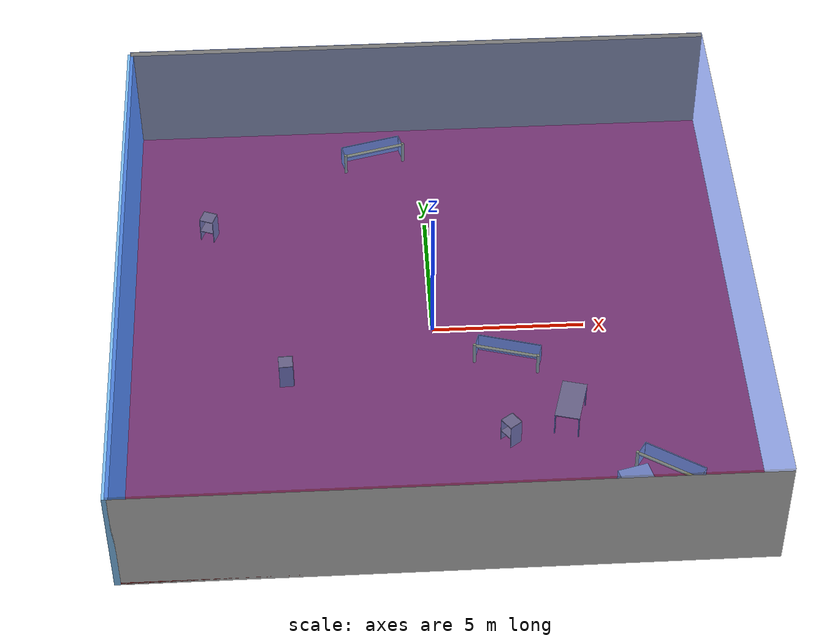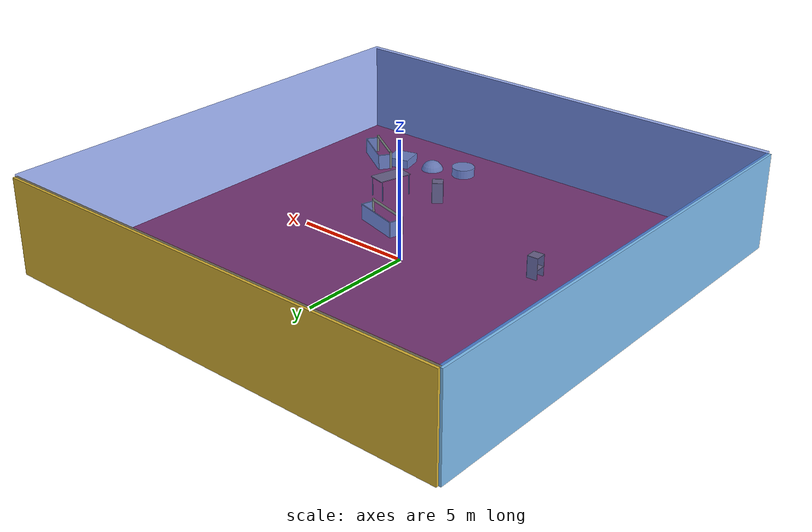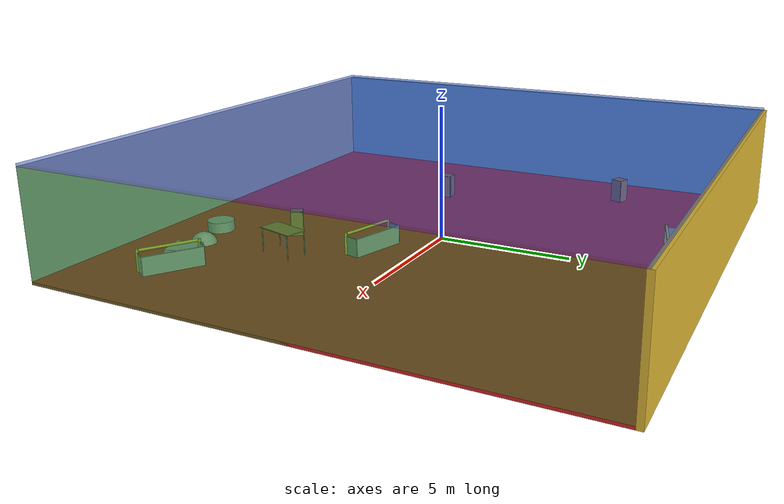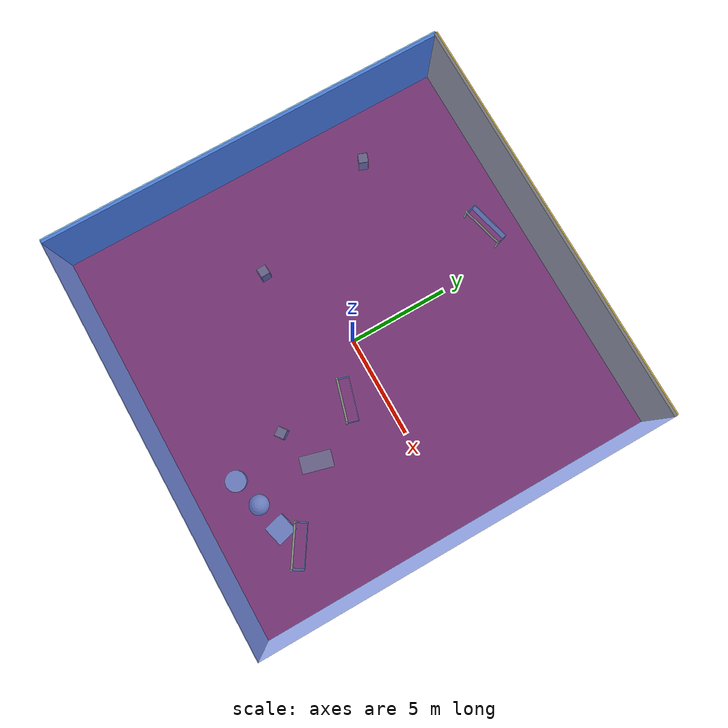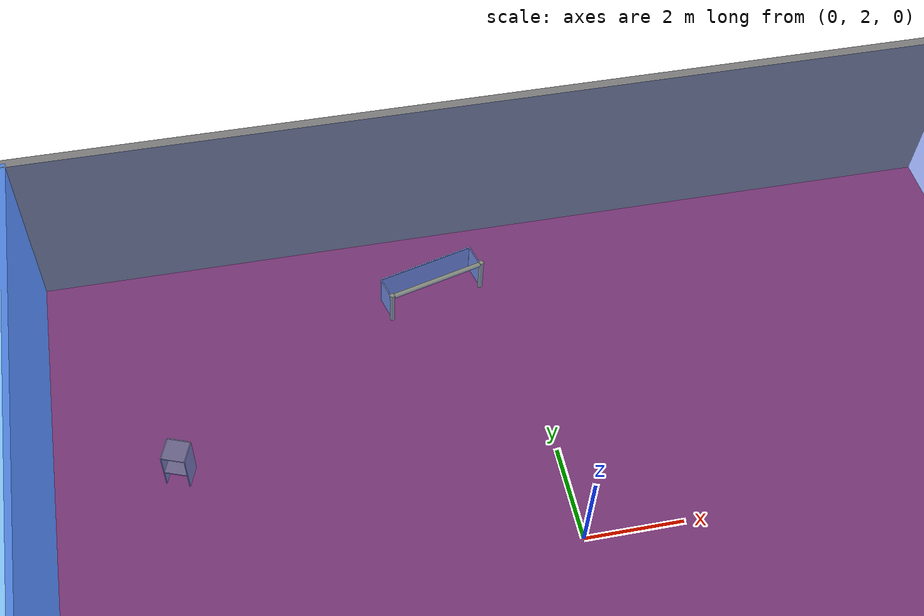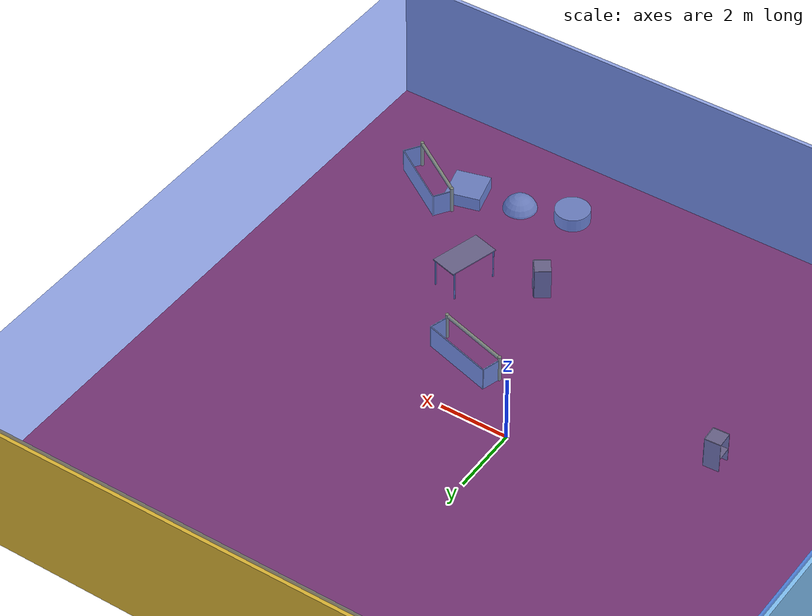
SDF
<sdf version="1.4">
 <world name="default">
  <physics type="ode">
   <max_step_size>0.001</max_step_size>
   <real_time_factor>1</real_time_factor>
   <real_time_update_rate>1000</real_time_update_rate>
   <gravity>0 0 -9.8</gravity>
  </physics>
  <scene><ambient>0.4 0.4 0.4 1</ambient><background>0.7 0.7 0.7 1</background><shadows>1</shadows></scene>
  <model name="Surrounding">
   <static>1</static>
   <link name="Ceiling">
    <collision name="Ceiling_Collision"><geometry><box><size>20 20 0.1</size></box></geometry></collision>
    <visual name="Ceiling_Visual">
     <geometry><box><size>20 20 0.1</size></box></geometry>
     <material>
      <script><uri>file://media/materials/scripts/gazebo.material</uri><name>Gazebo/BlueTransparent</name></script>
     </material>
    </visual>
    <pose>0 0 4.05 0 0 0</pose>
   </link>
   <link name="Wall_South">
    <collision name="Wall_South_Collision">
     <geometry><box><size>20 0 4</size></box></geometry>
     <pose>0 0 2 0 -0 0</pose>
    </collision>
    <visual name="Wall_South_Visual">
     <pose>0 0 2 0 -0 0</pose>
     <geometry><box><size>20 0 4</size></box></geometry>
     <material>
      <script><uri>file://media/materials/scripts/gazebo.material</uri><name>Gazebo/JointAnchor</name></script>
     </material>
    </visual>
    <velocity_decay><linear>0</linear><angular>0</angular></velocity_decay>
    <pose>0 -10 0 0 -0 0</pose>
   </link>
   <link name="Wall_East">
    <collision name="Wall_21_Collision">
     <geometry><box><size>20 0 4</size></box></geometry>
     <pose>0 0 2 0 -0 0</pose>
    </collision>
    <visual name="Wall_21_Visual">
     <pose>0 0 2 0 -0 0</pose>
     <geometry><box><size>20 0 4</size></box></geometry>
     <material>
      <script><uri>file://media/materials/scripts/gazebo.material</uri><name>Gazebo/GreenTransparent</name></script>
     </material>
    </visual>
    <velocity_decay><linear>0</linear><angular>0</angular></velocity_decay>
    <pose>10 0 0 0 -0 1.5708</pose>
   </link>
   <link name="Wall_North">
    <collision name="Wall_22_Collision">
     <geometry><box><size>20 0.2 4</size></box></geometry>
     <pose>0 0 2 0 -0 0</pose>
    </collision>
    <visual name="Wall_22_Visual">
     <pose>0 0 2 0 -0 0</pose>
     <geometry><box><size>20 0.2 4</size></box></geometry>
     <material>
      <script><uri>file://media/materials/scripts/gazebo.material</uri><name>Gazebo/Gold</name></script>
     </material>
    </visual>
    <velocity_decay><linear>0</linear><angular>0</angular></velocity_decay>
    <pose>0 10 0 0 -0 0</pose>
   </link>
   <link name="Wall_West">
    <collision name="Wall_23_Collision">
     <geometry><box><size>20 0.2 4</size></box></geometry>
     <pose>0 0 2 0 -0 0</pose>
    </collision>
    <visual name="Wall_23_Visual">
     <pose>0 0 2 0 -0 0</pose>
     <geometry><box><size>20 0.2 4</size></box></geometry>
     <material>
      <script><uri>file://media/materials/scripts/gazebo.material</uri><name>Gazebo/SkyBlue</name></script>
     </material>
    </visual>
    <velocity_decay><linear>0</linear><angular>0</angular></velocity_decay>
    <pose>-10 0 0 0 0 -1.5708</pose>
   </link>
   <link name="Ground_link">
    <collision name="collision">
     <pose>0 0 .05 0 -0 0</pose>
     <geometry><box><size>20 20 0.1</size></box></geometry>
    </collision>
    <visual name="visual">
     <pose>0 0 .05 0 -0 0</pose>
     <geometry><box><size>20 20 0.1</size></box></geometry>
     <material>
      <script><uri>file://media/materials/scripts/gazebo.material</uri><name>Gazebo/Red</name></script>
     </material>
    </visual>
   </link>
   <static>1</static>
  </model>
  <spherical_coordinates>
   <surface_model>EARTH_WGS84</surface_model>
   <latitude_deg>0</latitude_deg>
   <longitude_deg>0</longitude_deg>
   <elevation>0</elevation>
   <heading_deg>0</heading_deg>
  </spherical_coordinates>
  <light name="lightball_0" type="diffuse">
   <diffuse>0.8 0.8 0.8 1</diffuse>
   <specular>0.2 0.2 0.2 1</specular>
   <attenuation>
    <range>100</range>
    <constant>0.7</constant>
    <linear>0.01</linear>
    <quadratic>0.001</quadratic>
   </attenuation>
   <direction>-0.5 0.1 -0.9</direction>
   <pose>6.19026285154 -9.44621325947 3.875584128 0 0 0</pose>
  </light>
  <light name="lightball_1" type="diffuse">
   <diffuse>0.8 0.8 0.8 1</diffuse>
   <specular>0.2 0.2 0.2 1</specular>
   <attenuation>
    <range>100</range>
    <constant>0.7</constant>
    <linear>0.01</linear>
    <quadratic>0.001</quadratic>
   </attenuation>
   <direction>-0.5 0.1 -0.9</direction>
   <pose>-1.20539341565 -4.14651509416 0.690564679318 0 0 0</pose>
  </light>
  <light name="lightball_2" type="diffuse">
   <diffuse>0.8 0.8 0.8 1</diffuse>
   <specular>0.2 0.2 0.2 1</specular>
   <attenuation>
    <range>100</range>
    <constant>0.7</constant>
    <linear>0.01</linear>
    <quadratic>0.001</quadratic>
   </attenuation>
   <direction>-0.5 0.1 -0.9</direction>
   <pose>7.07514185815 -4.22994777794 1.44110281762 0 0 0</pose>
  </light>
  <light name="lightball_3" type="diffuse">
   <diffuse>0.8 0.8 0.8 1</diffuse>
   <specular>0.2 0.2 0.2 1</specular>
   <attenuation>
    <range>100</range>
    <constant>0.7</constant>
    <linear>0.01</linear>
    <quadratic>0.001</quadratic>
   </attenuation>
   <direction>-0.5 0.1 -0.9</direction>
   <pose>5.32745976253 -9.09951071164 2.57742832949 0 0 0</pose>
  </light>
  <light name="lightball_4" type="diffuse">
   <diffuse>0.8 0.8 0.8 1</diffuse>
   <specular>0.2 0.2 0.2 1</specular>
   <attenuation>
    <range>100</range>
    <constant>0.7</constant>
    <linear>0.01</linear>
    <quadratic>0.001</quadratic>
   </attenuation>
   <direction>-0.5 0.1 -0.9</direction>
   <pose>5.49087468874 7.72667204376 3.40375926265 0 0 0</pose>
  </light>
  <light name="lightball_5" type="diffuse">
   <diffuse>0.8 0.8 0.8 1</diffuse>
   <specular>0.2 0.2 0.2 1</specular>
   <attenuation>
    <range>100</range>
    <constant>0.7</constant>
    <linear>0.01</linear>
    <quadratic>0.001</quadratic>
   </attenuation>
   <direction>-0.5 0.1 -0.9</direction>
   <pose>6.17939071665 9.28994332738 1.51563249978 0 0 0</pose>
  </light>
  <light name="lightball_6" type="diffuse">
   <diffuse>0.8 0.8 0.8 1</diffuse>
   <specular>0.2 0.2 0.2 1</specular>
   <attenuation>
    <range>100</range>
    <constant>0.7</constant>
    <linear>0.01</linear>
    <quadratic>0.001</quadratic>
   </attenuation>
   <direction>-0.5 0.1 -0.9</direction>
   <pose>-5.34063555661 -4.89697029487 3.64036474086 0 0 0</pose>
  </light>
  <light name="lightball_7" type="diffuse">
   <diffuse>0.8 0.8 0.8 1</diffuse>
   <specular>0.2 0.2 0.2 1</specular>
   <attenuation>
    <range>100</range>
    <constant>0.7</constant>
    <linear>0.01</linear>
    <quadratic>0.001</quadratic>
   </attenuation>
   <direction>-0.5 0.1 -0.9</direction>
   <pose>-6.95609836835 -9.10379335691 0.880245391215 0 0 0</pose>
  </light>
  <light name="lightball_8" type="diffuse">
   <diffuse>0.8 0.8 0.8 1</diffuse>
   <specular>0.2 0.2 0.2 1</specular>
   <attenuation>
    <range>100</range>
    <constant>0.7</constant>
    <linear>0.01</linear>
    <quadratic>0.001</quadratic>
   </attenuation>
   <direction>-0.5 0.1 -0.9</direction>
   <pose>-7.41111098878 -9.05534996519 1.73860153598 0 0 0</pose>
  </light>
  <light name="lightball_9" type="diffuse">
   <diffuse>0.8 0.8 0.8 1</diffuse>
   <specular>0.2 0.2 0.2 1</specular>
   <attenuation>
    <range>100</range>
    <constant>0.7</constant>
    <linear>0.01</linear>
    <quadratic>0.001</quadratic>
   </attenuation>
   <direction>-0.5 0.1 -0.9</direction>
   <pose>5.25445521624 2.21813213734 1.53396854441 0 0 0</pose>
  </light>
  <light name="lightball_10" type="diffuse">
   <diffuse>0.8 0.8 0.8 1</diffuse>
   <specular>0.2 0.2 0.2 1</specular>
   <attenuation>
    <range>100</range>
    <constant>0.7</constant>
    <linear>0.01</linear>
    <quadratic>0.001</quadratic>
   </attenuation>
   <direction>-0.5 0.1 -0.9</direction>
   <pose>4.37216449938 -8.27664940153 1.66566934725 0 0 0</pose>
  </light>
  <light name="lightball_11" type="diffuse">
   <diffuse>0.8 0.8 0.8 1</diffuse>
   <specular>0.2 0.2 0.2 1</specular>
   <attenuation>
    <range>100</range>
    <constant>0.7</constant>
    <linear>0.01</linear>
    <quadratic>0.001</quadratic>
   </attenuation>
   <direction>-0.5 0.1 -0.9</direction>
   <pose>7.52077811942 -5.51353645012 0.68837661679 0 0 0</pose>
  </light>
  <light name="lightball_12" type="diffuse">
   <diffuse>0.8 0.8 0.8 1</diffuse>
   <specular>0.2 0.2 0.2 1</specular>
   <attenuation>
    <range>100</range>
    <constant>0.7</constant>
    <linear>0.01</linear>
    <quadratic>0.001</quadratic>
   </attenuation>
   <direction>-0.5 0.1 -0.9</direction>
   <pose>8.30132109126 1.35458813348 0.772356831954 0 0 0</pose>
  </light>
  <light name="lightball_13" type="diffuse">
   <diffuse>0.8 0.8 0.8 1</diffuse>
   <specular>0.2 0.2 0.2 1</specular>
   <attenuation>
    <range>100</range>
    <constant>0.7</constant>
    <linear>0.01</linear>
    <quadratic>0.001</quadratic>
   </attenuation>
   <direction>-0.5 0.1 -0.9</direction>
   <pose>6.7199157981 7.88726019677 1.72151339225 0 0 0</pose>
  </light>
  <include><uri>model://cabinet</uri><pose>-7.43624480478 4.75932487504 0 0 0 1.21129513832</pose></include>
  <include><uri>model://cabinet</uri><pose>-4.86920473858 -2.11645617131 0 0 0 0.0507558934031</pose></include>
  <include>
   <uri>model://robocup_3Dsim_goal</uri>
   <pose>-1.63929955957 8.04420127587 0 0 0 1.82366633204</pose>
  </include>
  <include><uri>model://cabinet</uri><pose>2.19136826163 -5.0202767383 0 0 0 0.631837550685</pose></include>
  <include>
   <uri>model://robocup_3Dsim_goal</uri>
   <pose>2.27671525776 -1.86753718893 0 0 0 1.29061195017</pose>
  </include>
  <include>
   <uri>model://textured_shapes</uri>
   <pose>4.53078782808 -7.53512802076 0 0 0 1.82937702881</pose>
  </include>
  <include><uri>model://table</uri><pose>4.14151788177 -4.23619360072 0 0 0 1.30839416519</pose></include>
  <include>
   <uri>model://robocup_3Dsim_goal</uri>
   <pose>6.89282218952 -6.97340407643 0 0 0 0.993620326912</pose>
  </include>
 </world>
</sdf>

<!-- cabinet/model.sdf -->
<sdf version="1.5">
  <model name="cabinet">
    <static>true</static>
    <link name="cabinet_bottom_plate">
      <inertial>
        <pose>0 0 -1 0 0 0</pose>
        <inertia>
          <ixx>2.050000</ixx>
          <ixy>0</ixy>
          <ixz>0</ixz>
          <iyy>2.050000</iyy>
          <iyz>0</iyz>
          <izz>2.050000</izz>
        </inertia>
        <mass>25.000000</mass>
      </inertial>
      <collision name="cabinet_bottom_plate_geom">
        <pose>0 0 0.010000 0 0 0</pose>
        <geometry>
          <box>
            <size>0.450000 0.450000 0.020000</size>
          </box>
        </geometry>
      </collision>
      <visual name="cabinet_bottom_plate_geom_visual">
        <pose>0 0 0.010000 0 0 0</pose>
        <geometry>
          <box>
            <size>0.450000 0.450000 0.020000</size>
          </box>
        </geometry>
        <material>
          <script>
            <uri>model://media/materials/scripts/gazebo.material</uri>
            <name>Gazebo/Wood</name>
          </script>
        </material>
      </visual>
      <collision name="cabinet_bottom_plate_geom_cabinet_back_plate">
        <pose>0.235000 0 0.510000 0 0 0</pose>
        <geometry>
          <box>
            <size>0.020000 0.450000 1.020000</size>
          </box>
        </geometry>
      </collision>
      <visual name="cabinet_bottom_plate_geom_cabinet_back_plate_visual">
        <pose>0.235000 0 0.510000 0 0 0</pose>
        <geometry>
          <box>
            <size>0.020000 0.450000 1.020000</size>
          </box>
        </geometry>
        <material>
          <script>
            <uri>model://media/materials/scripts/gazebo.material</uri>
            <name>Gazebo/Wood</name>
          </script>
        </material>
      </visual>
      <collision name="cabinet_bottom_plate_geom_cabinet_left_plate">
        <pose>0 0.235000 0.510000 0 0 0</pose>
        <geometry>
          <box>
            <size>0.450000 0.020000 1.020000</size>
          </box>
        </geometry>
      </collision>
      <visual name="cabinet_bottom_plate_geom_cabinet_left_plate_visual">
        <pose>0 0.235000 0.510000 0 0 0</pose>
        <geometry>
          <box>
            <size>0.450000 0.020000 1.020000</size>
          </box>
        </geometry>
        <material>
          <script>
            <uri>model://media/materials/scripts/gazebo.material</uri>
            <name>Gazebo/Wood</name>
          </script>
        </material>
      </visual>
      <collision name="cabinet_bottom_plate_geom_cabinet_middle_plate">
        <pose>0 0 0.510000 0 0 0</pose>
        <geometry>
          <box>
            <size>0.450000 0.450000 0.020000</size>
          </box>
        </geometry>
      </collision>
      <visual name="cabinet_bottom_plate_geom_cabinet_middle_plate_visual">
        <pose>0 0 0.510000 0 0 0</pose>
        <geometry>
          <box>
            <size>0.450000 0.450000 0.020000</size>
          </box>
        </geometry>
        <material>
          <script>
            <uri>model://media/materials/scripts/gazebo.material</uri>
            <name>Gazebo/Wood</name>
          </script>
        </material>
      </visual>
      <collision name="cabinet_bottom_plate_geom_cabinet_right_plate">
        <pose>0 -0.235000 0.510000 0 0 0</pose>
        <geometry>
          <box>
            <size>0.450000 0.020000 1.020000</size>
          </box>
        </geometry>
      </collision>
      <visual name="cabinet_bottom_plate_geom_cabinet_right_plate_visual">
        <pose>0 -0.235000 0.510000 0 0 0</pose>
        <geometry>
          <box>
            <size>0.450000 0.020000 1.020000</size>
          </box>
        </geometry>
        <material>
          <script>
            <uri>model://media/materials/scripts/gazebo.material</uri>
            <name>Gazebo/Wood</name>
          </script>
        </material>
      </visual>
      <collision name="cabinet_bottom_plate_geom_cabinet_top_plate">
        <pose>0 0 1.010000 0 0 0</pose>
        <geometry>
          <box>
            <size>0.450000 0.450000 0.020000</size>
          </box>
        </geometry>
      </collision>
      <visual name="cabinet_bottom_plate_geom_cabinet_top_plate_visual">
        <pose>0 0 1.010000 0 0 0</pose>
        <geometry>
          <box>
            <size>0.450000 0.450000 0.020000</size>
          </box>
        </geometry>
        <material>
          <script>
            <uri>model://media/materials/scripts/gazebo.material</uri>
            <name>Gazebo/Wood</name>
          </script>
        </material>
      </visual>
    </link>
  </model>
</sdf>

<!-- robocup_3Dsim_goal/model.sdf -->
<sdf version="1.5">
  <model name="robocup_3d_goal">
    <static>true</static>
    <link name="left_post">
      <pose>0 1.05 0.45 0 0 0</pose>
      <collision name="collision">
        <geometry>
          <cylinder>
            <radius>0.05</radius>
            <length>0.9</length>
          </cylinder>
        </geometry>
      </collision>
      <visual name="visual">
        <geometry>
          <cylinder>
            <radius>0.05</radius>
            <length>0.9</length>
          </cylinder>
        </geometry>
        <material>
          <script>
            <uri>file://media/materials/scripts/gazebo.material</uri>
            <name>Gazebo/ZincYellow</name>
          </script>
        </material>
      </visual>
    </link>
    <link name="left_support_horiz_lower">
      <pose>0.30 1.05 0.01 0 0 0</pose>
      <collision name="collision">
        <geometry>
          <box>
            <size>0.50 0.02 0.02</size>
          </box>
        </geometry>
      </collision>
      <visual name="visual">
        <geometry>
          <box>
            <size>0.50 0.02 0.02</size>
          </box>
        </geometry>
        <material>
          <script>
            <uri>file://media/materials/scripts/gazebo.material</uri>
            <name>Gazebo/White</name>
          </script>
        </material>
      </visual>
    </link>
    <link name="left_support_horiz_upper">
      <pose>0.30 1.05 0.79 0 0 0</pose>
      <collision name="collision">
        <geometry>
          <box>
            <size>0.50 0.02 0.02</size>
          </box>
        </geometry>
      </collision>
      <visual name="visual">
        <geometry>
          <box>
            <size>0.50 0.02 0.02</size>
          </box>
        </geometry>
        <material>
          <script>
            <uri>file://media/materials/scripts/gazebo.material</uri>
            <name>Gazebo/White</name>
          </script>
        </material>
      </visual>
    </link>
    <link name="left_support_vertical">
      <pose>0.56 1.05 0.4 0 1.5708 0</pose>
      <collision name="collision">
        <geometry>
          <box>
            <size>0.80 0.02 0.02</size>
          </box>
        </geometry>
      </collision>
      <visual name="visual">
        <geometry>
          <box>
            <size>0.80 0.02 0.02</size>
          </box>
        </geometry>
        <material>
          <script>
            <uri>file://media/materials/scripts/gazebo.material</uri>
            <name>Gazebo/White</name>
          </script>
        </material>
      </visual>
    </link>
    <link name="right_support_horiz_lower">
      <pose>0.30 -1.05 0.01 0 0 0</pose>
      <collision name="collision">
        <geometry>
          <box>
            <size>0.50 0.02 0.02</size>
          </box>
        </geometry>
      </collision>
      <visual name="visual">
        <geometry>
          <box>
            <size>0.50 0.02 0.02</size>
          </box>
        </geometry>
        <material>
          <script>
            <uri>file://media/materials/scripts/gazebo.material</uri>
            <name>Gazebo/White</name>
          </script>
        </material>
      </visual>
    </link>
    <link name="right_support_horiz_upper">
      <pose>0.30 -1.05 0.79 0 0 0</pose>
      <collision name="collision">
        <geometry>
          <box>
            <size>0.50 0.02 0.02</size>
          </box>
        </geometry>
      </collision>
      <visual name="visual">
        <geometry>
          <box>
            <size>0.50 0.02 0.02</size>
          </box>
        </geometry>
        <material>
          <script>
            <uri>file://media/materials/scripts/gazebo.material</uri>
            <name>Gazebo/White</name>
          </script>
        </material>
      </visual>
    </link>
    <link name="right_support_vertical">
      <pose>0.56 -1.05 0.4 0 1.5708 0</pose>
      <collision name="collision">
        <geometry>
          <box>
            <size>0.80 0.02 0.02</size>
          </box>
        </geometry>
      </collision>
      <visual name="visual">
        <geometry>
          <box>
            <size>0.80 0.02 0.02</size>
          </box>
        </geometry>
        <material>
          <script>
            <uri>file://media/materials/scripts/gazebo.material</uri>
            <name>Gazebo/White</name>
          </script>
        </material>
      </visual>
    </link>
    <link name="center_support_horiz_lower">
      <pose>0.56 0 0.01 0 1.5708 0</pose>
      <collision name="collision">
        <geometry>
          <box>
            <size>0.02 2.08 0.02</size>
          </box>
        </geometry>
      </collision>
      <visual name="visual">
        <geometry>
          <box>
            <size>0.02 2.08 0.02</size>
          </box>
        </geometry>
        <material>
          <script>
            <uri>file://media/materials/scripts/gazebo.material</uri>
            <name>Gazebo/White</name>
          </script>
        </material>
      </visual>
    </link>
    <link name="center_support_horiz_upper">
      <pose>0.56 0 0.79 0 1.5708 0</pose>
      <collision name="collision">
        <geometry>
          <box>
            <size>0.02 2.08 0.02</size>
          </box>
        </geometry>
      </collision>
      <visual name="visual">
        <geometry>
          <box>
            <size>0.02 2.08 0.02</size>
          </box>
        </geometry>
        <material>
          <script>
            <uri>file://media/materials/scripts/gazebo.material</uri>
            <name>Gazebo/White</name>
          </script>
        </material>
      </visual>
    </link>
    <link name="right_post">
      <pose>0 -1.05 0.45 0 0 0</pose>
      <collision name="collision">
        <geometry>
          <cylinder>
            <radius>0.05</radius>
            <length>0.9</length>
          </cylinder>
        </geometry>
      </collision>
      <visual name="visual">
        <geometry>
          <cylinder>
            <radius>0.05</radius>
            <length>0.9</length>
          </cylinder>
        </geometry>
        <material>
          <script>
            <uri>file://media/materials/scripts/gazebo.material</uri>
            <name>Gazebo/ZincYellow</name>
          </script>
        </material>
      </visual>
    </link>
    <link name="crossbar">
      <pose>0 0 0.85 1.57 1.57 0</pose>
      <collision name="collision">
        <geometry>
          <cylinder>
            <radius>0.05</radius>
            <length>2.0</length>
          </cylinder>
        </geometry>
      </collision>
      <visual name="visual">
        <geometry>
          <cylinder>
            <radius>0.05</radius>
            <length>2.0</length>
          </cylinder>
        </geometry>
        <material>
          <script>
            <uri>file://media/materials/scripts/gazebo.material</uri>
            <name>Gazebo/ZincYellow</name>
          </script>
        </material>
      </visual>
    </link>
    <link name="center_net">
      <pose>0.56 0 0.40 0 0 0</pose>
      <collision name="collision">
        <geometry>
          <box>
            <size>0.01 2.1 0.80</size>
          </box>
        </geometry>
      </collision>
      <visual name="visual">
        <geometry>
          <box>
            <size>0.01 2.1 0.80</size>
          </box>
        </geometry>
        <material>
          <script>
            <uri>model://../model_source/models/robocup09_spl_field/materials/scripts/</uri>
            <uri>model://../model_source/models/robocup09_spl_field/materials/textures/</uri>
            <name>RoboCup/Net</name>
          </script>
        </material>
      </visual>
    </link>
    <link name="left_net">
      <pose>0.30 1.05 0.40 0 0 0</pose>
      <collision name="collision">
        <geometry>
          <box>
            <size>0.50 0.01 0.76</size>
          </box>
        </geometry>
      </collision>
      <visual name="visual">
        <geometry>
          <box>
            <size>0.50 0.01 0.76</size>
          </box>
        </geometry>
        <material>
          <script>
            <uri>model://../model_source/models/robocup09_spl_field/materials/scripts/</uri>
            <uri>model://../model_source/models/robocup09_spl_field/materials/textures/</uri>
            <name>RoboCup/Net</name>
          </script>
        </material>
      </visual>
    </link>
    <link name="right_net">
      <pose>0.30 -1.05 0.40 0 0 0</pose>
      <collision name="collision">
        <geometry>
          <box>
            <size>0.50 0.01 0.76</size>
          </box>
        </geometry>
      </collision>
      <visual name="visual">
        <geometry>
          <box>
            <size>0.50 0.01 0.76</size>
          </box>
        </geometry>
        <material>
          <script>
            <uri>model://../model_source/models/robocup09_spl_field/materials/scripts/</uri>
            <uri>model://../model_source/models/robocup09_spl_field/materials/textures/</uri>
            <name>RoboCup/Net</name>
          </script>
        </material>
      </visual>
    </link>
  </model>
</sdf>

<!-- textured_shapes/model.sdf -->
<sdf version="1.6">
  <model name="textured_shapes">
    <pose>0 0 0.5 0 0 0</pose>
    <link name="box">
      <pose>0 -1.5 0 0 0 0</pose>
      <collision name="collision">
        <geometry>
          <box>
            <size>1 1 1</size>
          </box>
        </geometry>
      </collision>
      <visual name="visual">
        <geometry>
          <box>
            <size>1 1 1</size>
          </box>
        </geometry>
        <material>
          <script>
            <uri>model://../model_source/models/textured_shapes/materials/scripts</uri>
            <uri>model://../model_source/models/textured_shapes/materials/textures</uri>
            <name>TexturedShape/Squares</name>
          </script>
        </material>
      </visual>
    </link>
    <link name="sphere">
      <collision name="collision">
        <geometry>
          <sphere>
            <radius>0.5</radius>
          </sphere>
        </geometry>
      </collision>
      <visual name="visual">
        <geometry>
          <sphere>
            <radius>0.5</radius>
          </sphere>
        </geometry>
        <material>
          <script>
            <uri>model://../model_source/models/textured_shapes/materials/scripts</uri>
            <uri>model://../model_source/models/textured_shapes/materials/textures</uri>
            <name>TexturedShape/Squares</name>
          </script>
        </material>
      </visual>
    </link>
    <link name="cylinder">
      <pose>0 1.5 0 0 0 0</pose>
      <collision name="collision">
        <geometry>
          <cylinder>
            <radius>0.5</radius>
            <length>1</length>
          </cylinder>
        </geometry>
      </collision>
      <visual name="visual">
        <geometry>
          <cylinder>
            <radius>0.5</radius>
            <length>1</length>
          </cylinder>
        </geometry>
        <material>
          <script>
            <uri>model://../model_source/models/textured_shapes/materials/scripts</uri>
            <uri>model://../model_source/models/textured_shapes/materials/textures</uri>
            <name>TexturedShape/Squares</name>
          </script>
        </material>
      </visual>
    </link>
  </model>
</sdf>

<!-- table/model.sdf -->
<sdf version="1.5">
  <model name="table">
    <static>true</static>
    <link name="link">
      <collision name="surface">
        <pose>0 0 1.0 0 0 0</pose>
        <geometry>
          <box>
            <size>1.5 0.8 0.03</size>
          </box>
        </geometry>
        <surface>
          <friction>
            <ode>
              <mu>0.6</mu>
              <mu2>0.6</mu2>
            </ode>
          </friction>
        </surface>
      </collision>
      <visual name="visual1">
        <pose>0 0 1.0 0 0 0</pose>
        <geometry>
          <box>
            <size>1.5 0.8 0.03</size>
          </box>
        </geometry>
        <material>
          <script>
            <uri>model://media/materials/scripts/gazebo.material</uri>
            <name>Gazebo/Wood</name>
          </script>
        </material>
      </visual>
      <collision name="front_left_leg">
        <pose>0.68 0.38 0.5 0 0 0</pose>
        <geometry>
          <cylinder>
            <radius>0.02</radius>
            <length>1.0</length>
          </cylinder>
        </geometry>
      </collision>
      <visual name="front_left_leg">
        <pose>0.68 0.38 0.5 0 0 0</pose>
        <geometry>
          <cylinder>
            <radius>0.02</radius>
            <length>1.0</length>
          </cylinder>
        </geometry>
        <material>
          <script>
            <uri>model://media/materials/scripts/gazebo.material</uri>
            <name>Gazebo/Grey</name>
          </script>
        </material>
      </visual>
      <collision name="front_right_leg">
        <pose>0.68 -0.38 0.5 0 0 0</pose>
        <geometry>
          <cylinder>
            <radius>0.02</radius>
            <length>1.0</length>
          </cylinder>
        </geometry>
      </collision>
      <visual name="front_right_leg">
        <pose>0.68 -0.38 0.5 0 0 0</pose>
        <geometry>
          <cylinder>
            <radius>0.02</radius>
            <length>1.0</length>
          </cylinder>
        </geometry>
        <material>
          <script>
            <uri>model://media/materials/scripts/gazebo.material</uri>
            <name>Gazebo/Grey</name>
          </script>
        </material>
      </visual>
      <collision name="back_right_leg">
        <pose>-0.68 -0.38 0.5 0 0 0</pose>
        <geometry>
          <cylinder>
            <radius>0.02</radius>
            <length>1.0</length>
          </cylinder>
        </geometry>
      </collision>
      <visual name="back_right_leg">
        <pose>-0.68 -0.38 0.5 0 0 0</pose>
        <geometry>
          <cylinder>
            <radius>0.02</radius>
            <length>1.0</length>
          </cylinder>
        </geometry>
        <material>
          <script>
            <uri>model://media/materials/scripts/gazebo.material</uri>
            <name>Gazebo/Grey</name>
          </script>
        </material>
      </visual>
      <collision name="back_left_leg">
        <pose>-0.68 0.38 0.5 0 0 0</pose>
        <geometry>
          <cylinder>
            <radius>0.02</radius>
            <length>1.0</length>
          </cylinder>
        </geometry>
      </collision>
      <visual name="back_left_leg">
        <pose>-0.68 0.38 0.5 0 0 0</pose>
        <geometry>
          <cylinder>
            <radius>0.02</radius>
            <length>1.0</length>
          </cylinder>
        </geometry>
        <material>
          <script>
            <uri>model://media/materials/scripts/gazebo.material</uri>
            <name>Gazebo/Grey</name>
          </script>
        </material>
      </visual>
    </link>
  </model>
</sdf>
